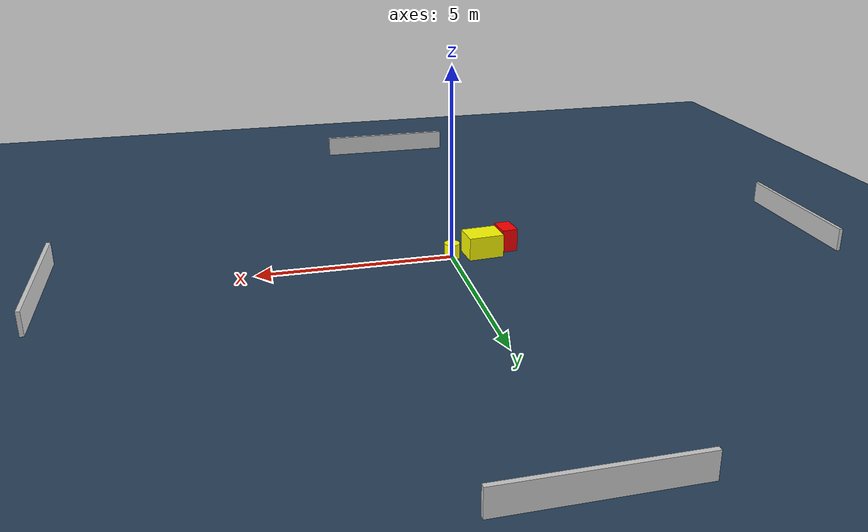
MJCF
<?xml version="1.0" ?>
<mujoco model="generated_environment">
  <option timestep="0.01" integrator="RK4" cone="elliptic"/>
  <default>
    <geom density="1"/>
  </default>
  <asset>
    <texture builtin="gradient" height="3072" name="skybox" rgb1="0.3 0.5 0.7" rgb2="0 0 0" type="skybox" width="512"/>
    <texture builtin="checker" height="300" name="groundplane" rgb1="0.2 0.3 0.4" rgb2="0.1 0.2 0.3" type="2d" width="300"/>
    <material name="groundplane" reflectance="0.2" texrepeat="5 5" texture="groundplane"/>
  </asset>
  <worldbody>
    <light dir="0 0 -1" directional="true" pos="0 0 1.5"/>
    <geom condim="3" friction="0.5 0.005 0.001" material="groundplane" name="floor" pos="0 0 0" size="0 0 0.05" type="plane"/>
    <body name="walls">
      <geom name="wall_1" condim="4" pos="-10.0 0.0 0.3" rgba="0.800000011920929 0.800000011920929 0.800000011920929 1.0" size="0.05 2.0 0.3" type="box"/>
      <geom name="wall_2" condim="4" pos="10.0 0.0 0.3" rgba="0.800000011920929 0.800000011920929 0.800000011920929 1.0" size="0.05 2.0 0.3" type="box"/>
      <geom name="wall_3" condim="4" pos="0.0 -10.0 0.3" rgba="0.800000011920929 0.800000011920929 0.800000011920929 1.0" size="2.0 0.05 0.3" type="box"/>
      <geom name="wall_4" condim="4" pos="0.0 10.0 0.3" rgba="0.800000011920929 0.800000011920929 0.800000011920929 1.0" size="2.0 0.05 0.3" type="box"/>
    </body>
    <body name="robot">
      <joint name="joint_x" type="slide" pos="0 0 0" axis="1 0 0"/>
      <joint name="joint_y" type="slide" pos="0 0 0" axis="0 1 0"/>
      <geom name="robot" type="cylinder" pos="0.0 0.0 0.2" size="0.2 0.2 0.0" mass="5.0" friction="1.0 0.005 0.0001" condim="4" rgba="1.0 1.0 0.0 1.0"/>
    </body>
    <body name="obstacle_1_movable">
      <geom name="obstacle_1_movable" condim="4" pos="-0.8201712125537127 -0.048234674723744105 0.3" euler="0 0 184.48638851838547" friction="0.0 0.005 0.001" rgba="1.0 1.0 0.0 1.0" size="0.4602914349298559 0.3551350761812797 0.3" type="box" mass="0.1"/>
      <joint type="free"/>
    </body>
    <body name="obstacle_2_static">
      <geom name="obstacle_2_static" condim="4" pos="-1.5381897320663251 -0.32283176803891545 0.3" euler="0 0 94.47193381018769" friction="0.0 0.005 0.001" rgba="1.0 0.0 0.0 1.0" size="0.3085107307273087 0.20939346293337757 0.3" type="box"/>
    </body>
  </worldbody>
  <actuator>
    <motor name="actuator_x" joint="joint_x" gear="1" ctrlrange="-1 1"/>
    <motor name="actuator_y" joint="joint_y" gear="1" ctrlrange="-1 1"/>
  </actuator>
</mujoco>
